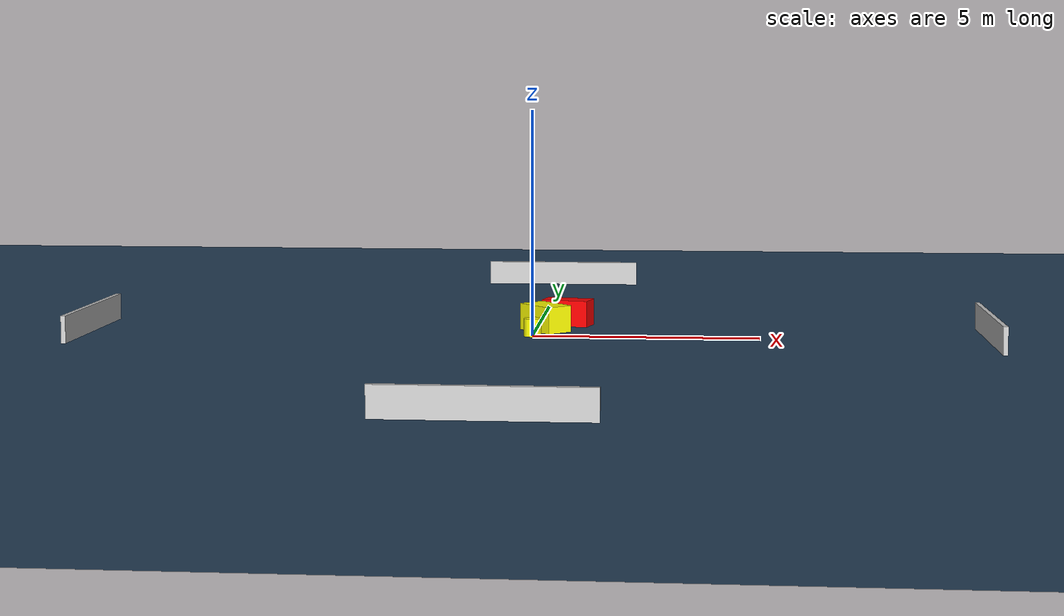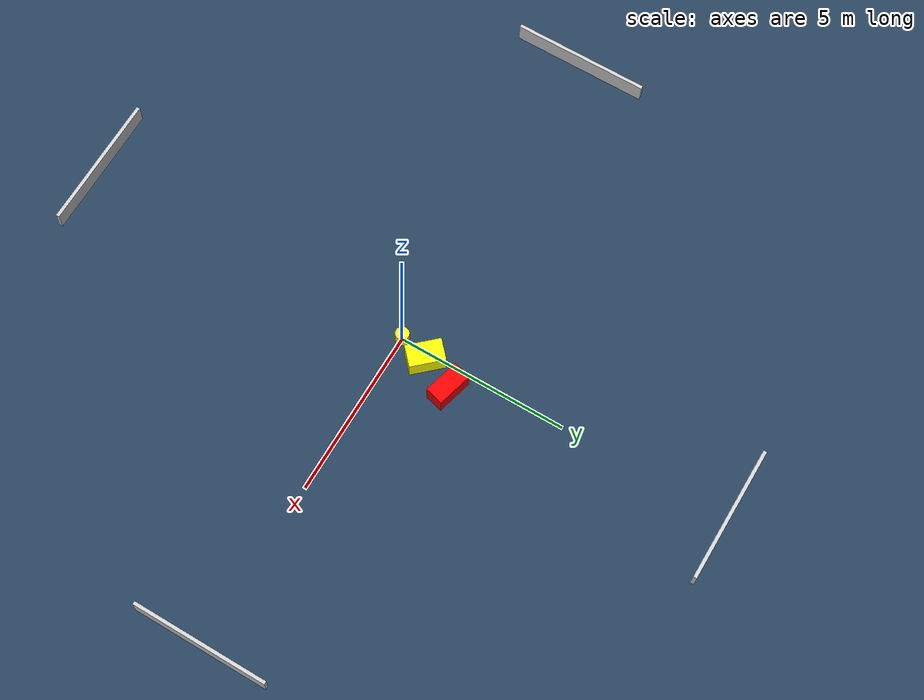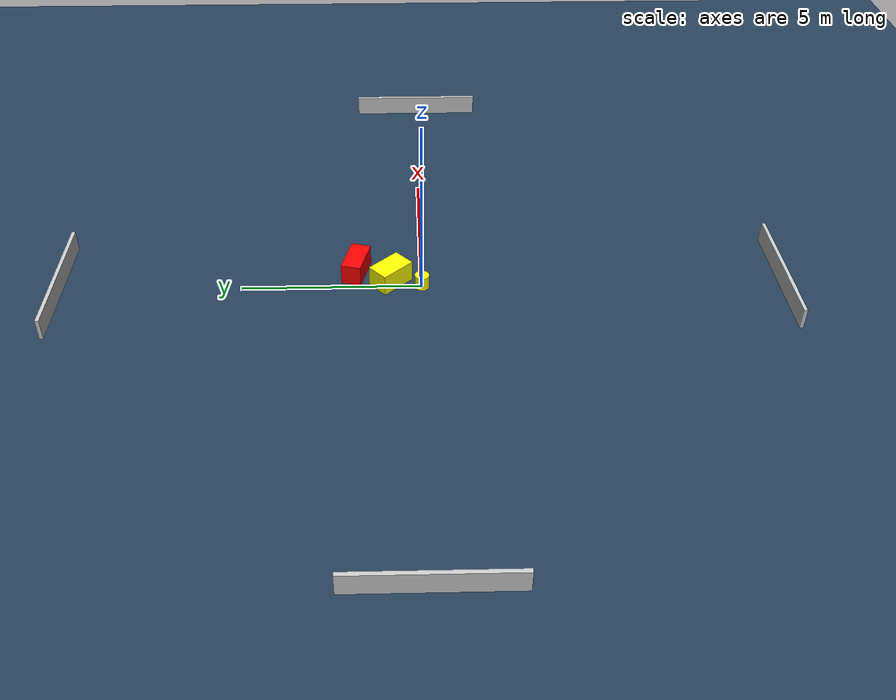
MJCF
<?xml version="1.0" ?>
<mujoco model="generated_environment">
  <option timestep="0.01" integrator="RK4" cone="elliptic"/>
  <default>
    <geom density="1"/>
  </default>
  <asset>
    <texture builtin="gradient" height="3072" name="skybox" rgb1="0.3 0.5 0.7" rgb2="0 0 0" type="skybox" width="512"/>
    <texture builtin="checker" height="300" name="groundplane" rgb1="0.2 0.3 0.4" rgb2="0.1 0.2 0.3" type="2d" width="300"/>
    <material name="groundplane" reflectance="0.2" texrepeat="5 5" texture="groundplane"/>
  </asset>
  <worldbody>
    <light dir="0 0 -1" directional="true" pos="0 0 1.5"/>
    <geom condim="3" friction="0.5 0.005 0.001" material="groundplane" name="floor" pos="0 0 0" size="0 0 0.05" type="plane"/>
    <body name="walls">
      <geom name="wall_1" condim="4" pos="-10.0 0.0 0.3" rgba="0.800000011920929 0.800000011920929 0.800000011920929 1.0" size="0.05 2.0 0.3" type="box"/>
      <geom name="wall_2" condim="4" pos="10.0 0.0 0.3" rgba="0.800000011920929 0.800000011920929 0.800000011920929 1.0" size="0.05 2.0 0.3" type="box"/>
      <geom name="wall_3" condim="4" pos="0.0 -10.0 0.3" rgba="0.800000011920929 0.800000011920929 0.800000011920929 1.0" size="2.0 0.05 0.3" type="box"/>
      <geom name="wall_4" condim="4" pos="0.0 10.0 0.3" rgba="0.800000011920929 0.800000011920929 0.800000011920929 1.0" size="2.0 0.05 0.3" type="box"/>
    </body>
    <body name="robot">
      <joint name="joint_x" type="slide" pos="0 0 0" axis="1 0 0"/>
      <joint name="joint_y" type="slide" pos="0 0 0" axis="0 1 0"/>
      <geom name="robot" type="cylinder" pos="0.0 0.0 0.2" size="0.2 0.2 0.0" mass="5.0" friction="1.0 0.005 0.0001" condim="4" rgba="1.0 1.0 0.0 1.0"/>
    </body>
    <body name="obstacle_1_movable">
      <geom name="obstacle_1_movable" condim="4" pos="0.2247619684814999 0.8624640448940698 0.3" euler="0 0 222.8274290000299" friction="0.0 0.005 0.001" rgba="1.0 1.0 0.0 1.0" size="0.3235296132482478 0.5159794896919485 0.3" type="box" mass="0.1"/>
      <joint type="free"/>
    </body>
    <body name="obstacle_2_static">
      <geom name="obstacle_2_static" condim="4" pos="0.6631629826588885 1.8364136916322542 0.3" euler="0 0 165.55697996004034" friction="0.0 0.005 0.001" rgba="1.0 0.0 0.0 1.0" size="0.5404539091382863 0.27535967741648343 0.3" type="box"/>
    </body>
  </worldbody>
  <actuator>
    <motor name="actuator_x" joint="joint_x" gear="1" ctrlrange="-1 1"/>
    <motor name="actuator_y" joint="joint_y" gear="1" ctrlrange="-1 1"/>
  </actuator>
</mujoco>
